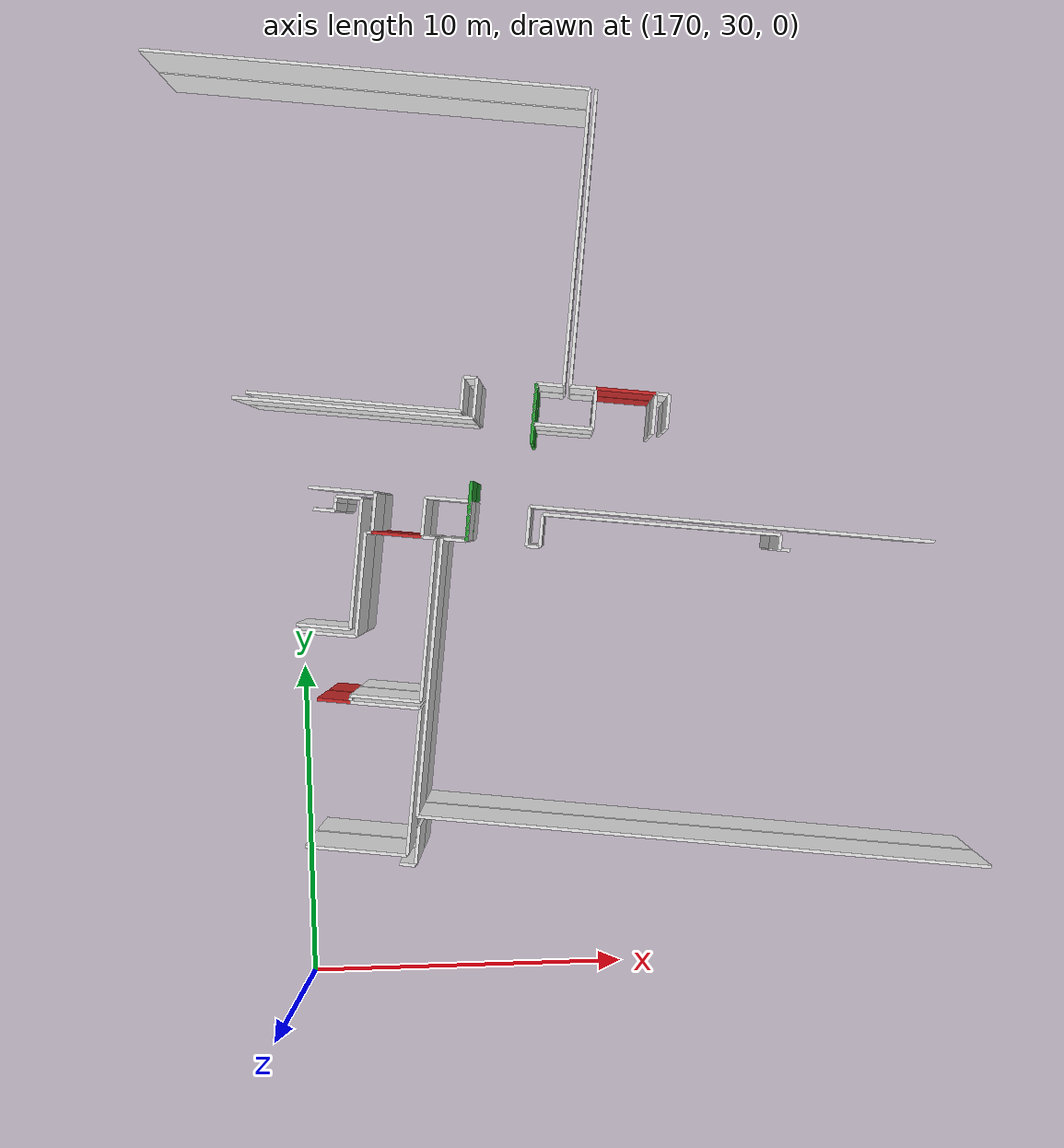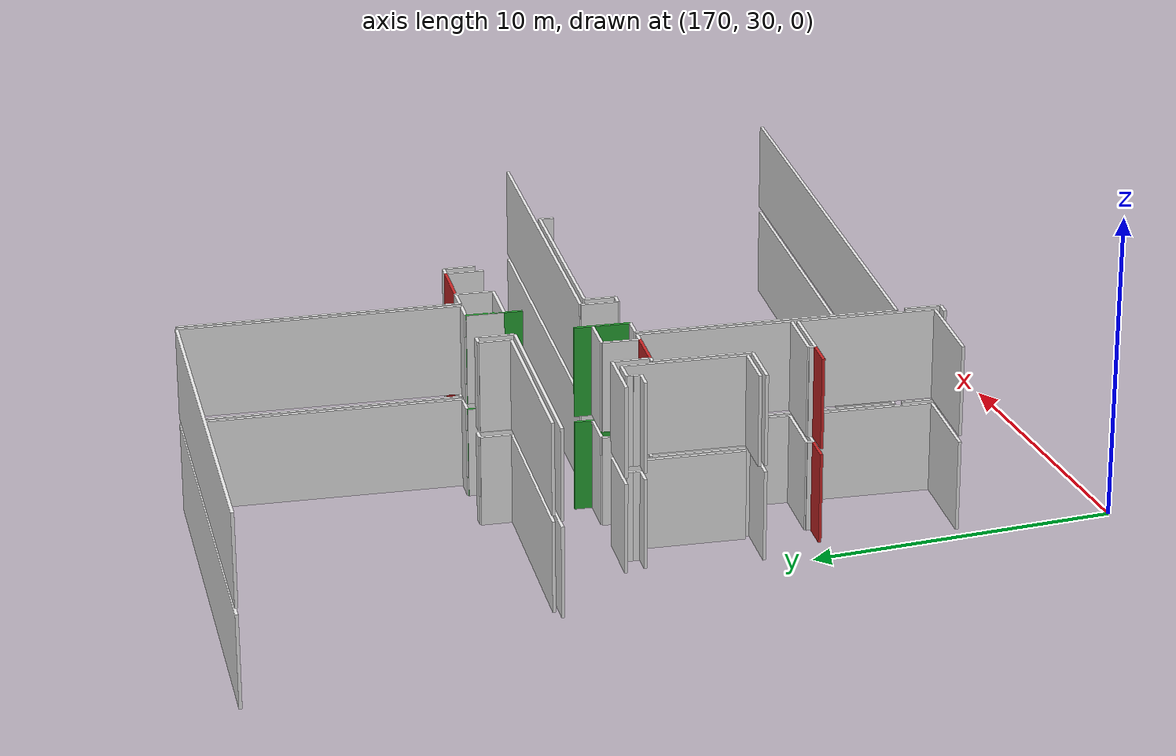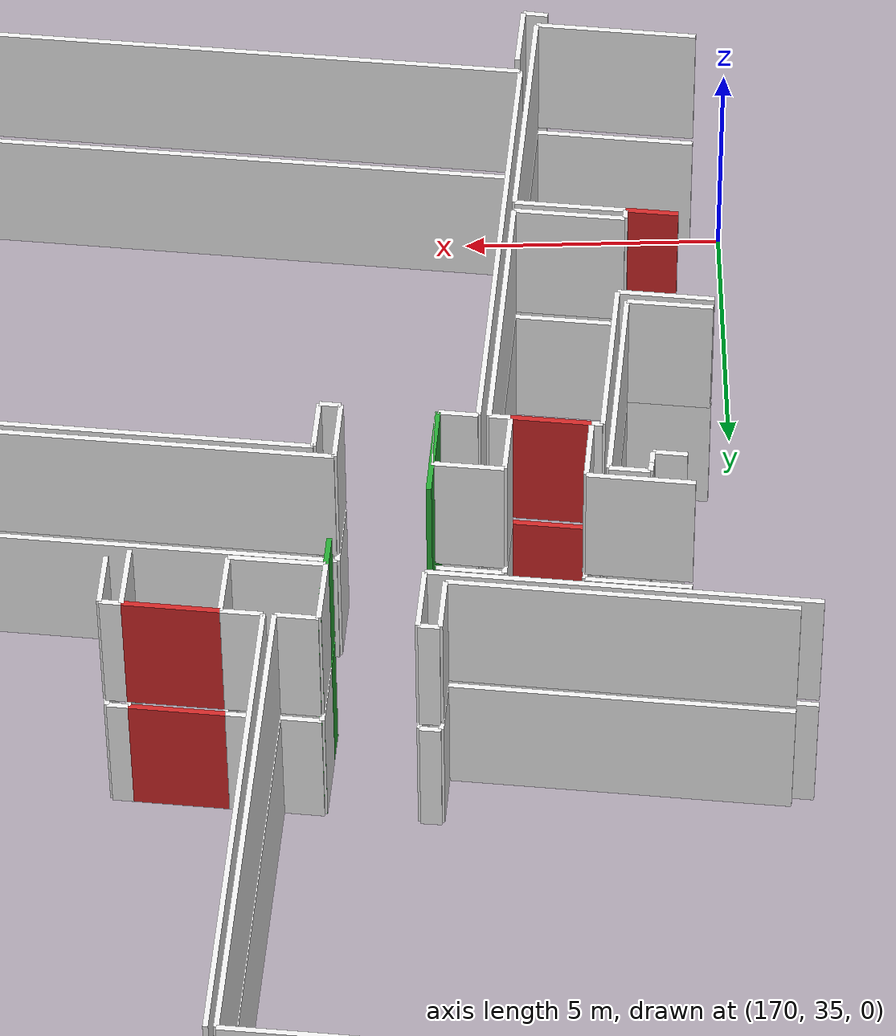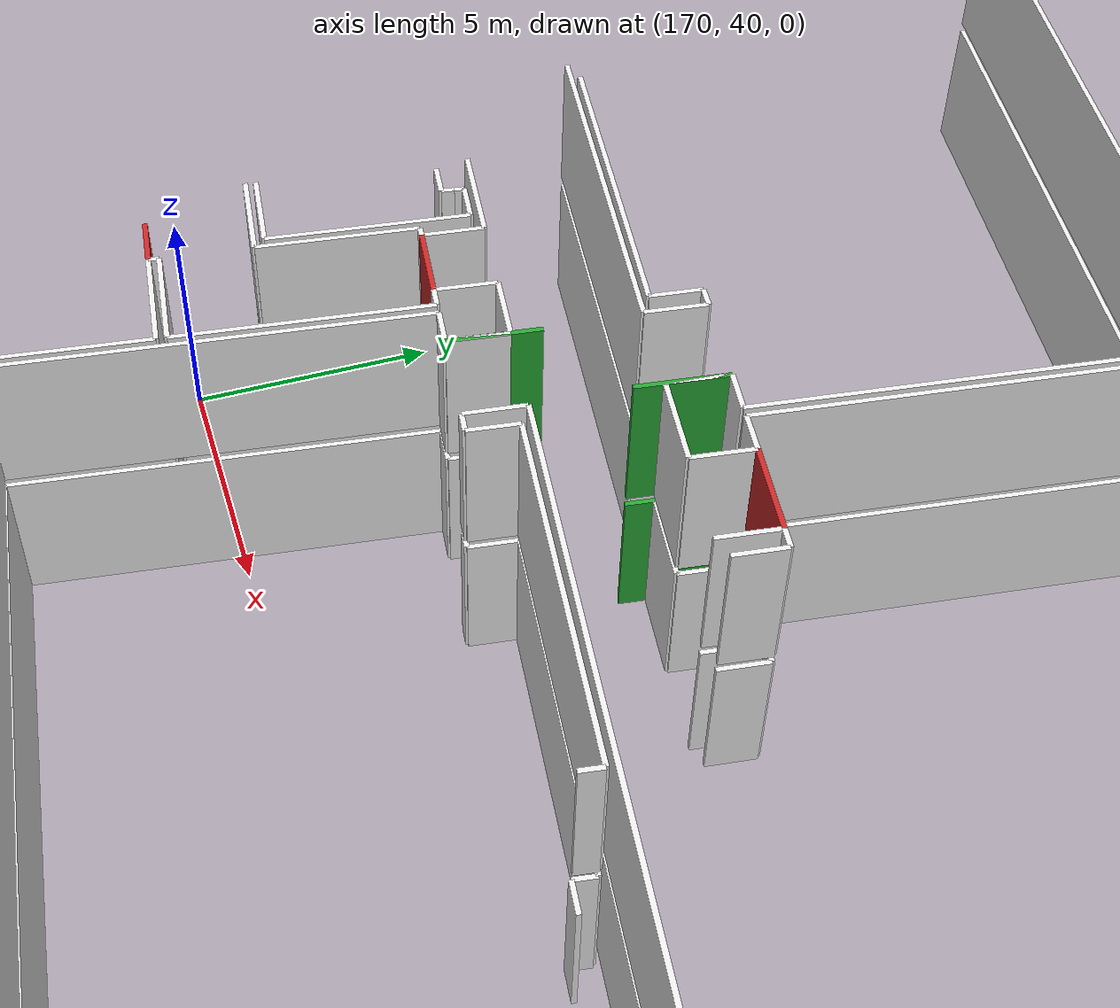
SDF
<sdf version="1.6">
 <world name="default">
  <model name="wall_180.6_48.3_0.0">
   <static>true</static>
   <pose>180.6350000000093 48.31000000005588 1.5 0 0 3.0193009299888676</pose>
   <link name="link">
    <visual name="visual">
     <geometry><box><size>1.8034688796923075 0.1 3</size></box></geometry>
     <material>
      <script><uri>file://media/materials/scripts/gazebo.material</uri><name>Gazebo/Red</name></script>
     </material>
    </visual>
   </link>
  </model>
  <model name="wall_175.8_44.9_0.0">
   <static>true</static>
   <pose>175.80500000022585 44.86500000022352 1.5 0 0 1.4540117310915928</pose>
   <link name="link">
    <visual name="visual">
     <geometry><box><size>1.802276338498982 0.1 3</size></box></geometry>
     <material>
      <script><uri>file://media/materials/scripts/gazebo.material</uri><name>Gazebo/Green</name></script>
     </material>
    </visual>
   </link>
  </model>
  <model name="wall_177.8_47.7_0.0">
   <static>true</static>
   <pose>177.8499999999185 47.734999999869615 1.5 0 0 -1.6930880506520969</pose>
   <link name="link">
    <visual name="visual">
     <geometry><box><size>1.803468879749112 0.1 3</size></box></geometry>
     <material>
      <script><uri>file://media/materials/scripts/gazebo.material</uri><name>Gazebo/Green</name></script>
     </material>
    </visual>
   </link>
  </model>
  <model name="wall_173.6_44.2_0.0">
   <static>true</static>
   <pose>173.6149999999907 44.21999999997206 1.5 0 0 -0.12022278677294355</pose>
   <link name="link">
    <visual name="visual">
     <geometry><box><size>1.5008331019912227 0.1 3</size></box></geometry>
     <material>
      <script><uri>file://media/materials/scripts/gazebo.material</uri><name>Gazebo/Red</name></script>
     </material>
    </visual>
   </link>
  </model>
  <model name="wall_171.6_39.3_0.0">
   <static>true</static>
   <pose>171.56500000000233 39.300000000046566 1.5 0 0 -0.12062366822892527</pose>
   <link name="link">
    <visual name="visual">
     <geometry><box><size>0.9972462082638486 0.1 3</size></box></geometry>
     <material>
      <script><uri>file://media/materials/scripts/gazebo.material</uri><name>Gazebo/Red</name></script>
     </material>
    </visual>
   </link>
  </model>
  <model name="wall_181.9_47.6_0.0">
   <static>true</static>
   <pose>181.86999999999534 47.639999999897555 1.5 0 0 1.4536875822346544</pose>
   <link name="link">
    <visual name="visual">
     <geometry><box><size>1.0270345661353761 0.1 3</size></box></geometry>
     <material>
      <script><uri>file://media/materials/scripts/gazebo.material</uri><name>Gazebo/White</name></script>
     </material>
    </visual>
   </link>
  </model>
  <model name="wall_181.7_48.2_0.0">
   <static>true</static>
   <pose>181.73000000001048 48.175000000046566 1.5 0 0 3.01723765834454</pose>
   <link name="link">
    <visual name="visual">
     <geometry><box><size>0.4031128874149275 0.1 3</size></box></geometry>
     <material>
      <script><uri>file://media/materials/scripts/gazebo.material</uri><name>Gazebo/White</name></script>
     </material>
    </visual>
   </link>
  </model>
  <model name="wall_179.4_48.5_0.0">
   <static>true</static>
   <pose>179.35000000000582 48.46499999985099 1.5 0 0 3.026716048357006</pose>
   <link name="link">
    <visual name="visual">
     <geometry><box><size>0.7851751396509952 0.1 3</size></box></geometry>
     <material>
      <script><uri>file://media/materials/scripts/gazebo.material</uri><name>Gazebo/White</name></script>
     </material>
    </visual>
   </link>
  </model>
  <model name="wall_179.5_52.9_0.0">
   <static>true</static>
   <pose>179.49500000002445 52.949999999953434 1.5 0 0 1.4508789678012857</pose>
   <link name="link">
    <visual name="visual">
     <geometry><box><size>8.944232779076149 0.1 3</size></box></geometry>
     <material>
      <script><uri>file://media/materials/scripts/gazebo.material</uri><name>Gazebo/White</name></script>
     </material>
    </visual>
   </link>
  </model>
  <model name="wall_183.7_44.2_0.0">
   <static>true</static>
   <pose>183.69000000000233 44.22000000020489 1.5 0 0 3.021708265311705</pose>
   <link name="link">
    <visual name="visual">
     <geometry><box><size>12.207620570765556 0.1 3</size></box></geometry>
     <material>
      <script><uri>file://media/materials/scripts/gazebo.material</uri><name>Gazebo/White</name></script>
     </material>
    </visual>
   </link>
  </model>
  <model name="wall_177.6_44.4_0.0">
   <static>true</static>
   <pose>177.55999999999767 44.35499999998137 1.5 0 0 -1.6879050713333807</pose>
   <link name="link">
    <visual name="visual">
     <geometry><box><size>1.1982069942122657 0.1 3</size></box></geometry>
     <material>
      <script><uri>file://media/materials/scripts/gazebo.material</uri><name>Gazebo/White</name></script>
     </material>
    </visual>
   </link>
  </model>
  <model name="wall_175.8_44.6_0.0">
   <static>true</static>
   <pose>175.77499999999418 44.56500000017695 1.5 0 0 1.4454072064764434</pose>
   <link name="link">
    <visual name="visual">
     <geometry><box><size>1.199416524755487 0.1 3</size></box></geometry>
     <material>
      <script><uri>file://media/materials/scripts/gazebo.material</uri><name>Gazebo/White</name></script>
     </material>
    </visual>
   </link>
  </model>
  <model name="wall_175.2_45.2_0.0">
   <static>true</static>
   <pose>175.17999999999302 45.23999999999069 1.5 0 0 3.0227523092521484</pose>
   <link name="link">
    <visual name="visual">
     <geometry><box><size>1.3495184325570784 0.1 3</size></box></geometry>
     <material>
      <script><uri>file://media/materials/scripts/gazebo.material</uri><name>Gazebo/White</name></script>
     </material>
    </visual>
   </link>
  </model>
  <model name="wall_174.4_44.7_0.0">
   <static>true</static>
   <pose>174.43499999999767 44.7249999998603 1.5 0 0 -1.696185447161499</pose>
   <link name="link">
    <visual name="visual">
     <geometry><box><size>1.1994165247627664 0.1 3</size></box></geometry>
     <material>
      <script><uri>file://media/materials/scripts/gazebo.material</uri><name>Gazebo/White</name></script>
     </material>
    </visual>
   </link>
  </model>
  <model name="wall_172.9_44.9_0.0">
   <static>true</static>
   <pose>172.94000000000233 44.90500000002794 1.5 0 0 1.4536875822110042</pose>
   <link name="link">
    <visual name="visual">
     <geometry><box><size>1.198206993749794 0.1 3</size></box></geometry>
     <material>
      <script><uri>file://media/materials/scripts/gazebo.material</uri><name>Gazebo/White</name></script>
     </material>
    </visual>
   </link>
  </model>
  <model name="wall_172.0_45.6_0.0">
   <static>true</static>
   <pose>172.0100000000093 45.62000000011176 1.5 0 0 3.0221637274612827</pose>
   <link name="link">
    <visual name="visual">
     <geometry><box><size>2.0143485299488986 0.1 3</size></box></geometry>
     <material>
      <script><uri>file://media/materials/scripts/gazebo.material</uri><name>Gazebo/White</name></script>
     </material>
    </visual>
   </link>
  </model>
  <model name="wall_172.4_48.1_0.0">
   <static>true</static>
   <pose>172.40499999999884 48.074999999953434 1.5 0 0 -0.11975615108864926</pose>
   <link name="link">
    <visual name="visual">
     <geometry><box><size>7.2821562740685915 0.1 3</size></box></geometry>
     <material>
      <script><uri>file://media/materials/scripts/gazebo.material</uri><name>Gazebo/White</name></script>
     </material>
    </visual>
   </link>
  </model>
  <model name="wall_176.1_48.2_0.0">
   <static>true</static>
   <pose>176.09500000000116 48.24500000011176 1.5 0 0 1.4474586259198403</pose>
   <link name="link">
    <visual name="visual">
     <geometry><box><size>1.2192620718694447 0.1 3</size></box></geometry>
     <material>
      <script><uri>file://media/materials/scripts/gazebo.material</uri><name>Gazebo/White</name></script>
     </material>
    </visual>
   </link>
  </model>
  <model name="wall_177.9_48.0_0.0">
   <static>true</static>
   <pose>177.8850000000093 48.02499999990687 1.5 0 0 -1.6941340277173305</pose>
   <link name="link">
    <visual name="visual">
     <geometry><box><size>1.2192620718766056 0.1 3</size></box></geometry>
     <material>
      <script><uri>file://media/materials/scripts/gazebo.material</uri><name>Gazebo/White</name></script>
     </material>
    </visual>
   </link>
  </model>
  <model name="wall_178.7_47.3_0.0">
   <static>true</static>
   <pose>178.70000000001164 47.31499999994412 1.5 0 0 -0.11743468977405322</pose>
   <link name="link">
    <visual name="visual">
     <geometry><box><size>1.7923448329168745 0.1 3</size></box></geometry>
     <material>
      <script><uri>file://media/materials/scripts/gazebo.material</uri><name>Gazebo/White</name></script>
     </material>
    </visual>
   </link>
  </model>
  <model name="wall_179.7_47.8_0.0">
   <static>true</static>
   <pose>179.66500000000815 47.81499999994412 1.5 0 0 1.4474586259198403</pose>
   <link name="link">
    <visual name="visual">
     <geometry><box><size>1.2192620718694447 0.1 3</size></box></geometry>
     <material>
      <script><uri>file://media/materials/scripts/gazebo.material</uri><name>Gazebo/White</name></script>
     </material>
    </visual>
   </link>
  </model>
  <model name="wall_181.5_47.6_0.0">
   <static>true</static>
   <pose>181.4550000000163 47.59500000020489 1.5 0 0 -1.6941340277173305</pose>
   <link name="link">
    <visual name="visual">
     <geometry><box><size>1.2192620718766056 0.1 3</size></box></geometry>
     <material>
      <script><uri>file://media/materials/scripts/gazebo.material</uri><name>Gazebo/White</name></script>
     </material>
    </visual>
   </link>
  </model>
  <model name="wall_172.2_45.4_0.0">
   <static>true</static>
   <pose>172.21000000002095 45.39500000001863 1.5 0 0 -0.11787210300242888</pose>
   <link name="link">
    <visual name="visual">
     <geometry><box><size>0.7653103945376242 0.1 3</size></box></geometry>
     <material>
      <script><uri>file://media/materials/scripts/gazebo.material</uri><name>Gazebo/White</name></script>
     </material>
    </visual>
   </link>
  </model>
  <model name="wall_172.4_43.4_0.0">
   <static>true</static>
   <pose>172.35500000001048 43.39500000001863 1.5 0 0 -1.69042694704516</pose>
   <link name="link">
    <visual name="visual">
     <geometry><box><size>3.938146772429098 0.1 3</size></box></geometry>
     <material>
      <script><uri>file://media/materials/scripts/gazebo.material</uri><name>Gazebo/White</name></script>
     </material>
    </visual>
   </link>
  </model>
  <model name="wall_171.5_45.0_0.0">
   <static>true</static>
   <pose>171.45000000001164 45.04000000003725 1.5 0 0 -0.12435499465869924</pose>
   <link name="link">
    <visual name="visual">
     <geometry><box><size>0.6449806198869872 0.1 3</size></box></geometry>
     <material>
      <script><uri>file://media/materials/scripts/gazebo.material</uri><name>Gazebo/White</name></script>
     </material>
    </visual>
   </link>
  </model>
  <model name="wall_171.8_45.1_0.0">
   <static>true</static>
   <pose>171.7850000000035 45.125 1.5 0 0 1.4513674008959114</pose>
   <link name="link">
    <visual name="visual">
     <geometry><box><size>0.25179356623667715 0.1 3</size></box></geometry>
     <material>
      <script><uri>file://media/materials/scripts/gazebo.material</uri><name>Gazebo/White</name></script>
     </material>
    </visual>
   </link>
  </model>
  <model name="wall_171.8_45.3_0.0">
   <static>true</static>
   <pose>171.81500000000233 45.34499999997206 1.5 0 0 1.4141944496240997</pose>
   <link name="link">
    <visual name="visual">
     <geometry><box><size>0.19235384056587543 0.1 3</size></box></geometry>
     <material>
      <script><uri>file://media/materials/scripts/gazebo.material</uri><name>Gazebo/White</name></script>
     </material>
    </visual>
   </link>
  </model>
  <model name="wall_178.4_48.6_0.0">
   <static>true</static>
   <pose>178.36000000001513 48.579999999841675 1.5 0 0 3.0172376589266166</pose>
   <link name="link">
    <visual name="visual">
     <geometry><box><size>0.806225774829855 0.1 3</size></box></geometry>
     <material>
      <script><uri>file://media/materials/scripts/gazebo.material</uri><name>Gazebo/White</name></script>
     </material>
    </visual>
   </link>
  </model>
  <model name="wall_176.0_48.9_0.0">
   <static>true</static>
   <pose>175.97000000000116 48.87000000011176 1.5 0 0 3.0419240009977764</pose>
   <link name="link">
    <visual name="visual">
     <geometry><box><size>0.4019950248137912 0.1 3</size></box></geometry>
     <material>
      <script><uri>file://media/materials/scripts/gazebo.material</uri><name>Gazebo/White</name></script>
     </material>
    </visual>
   </link>
  </model>
  <model name="wall_175.7_48.4_0.0">
   <static>true</static>
   <pose>175.71000000002095 48.38000000012107 1.5 0 0 -1.687905071355139</pose>
   <link name="link">
    <visual name="visual">
     <geometry><box><size>1.0270345661353761 0.1 3</size></box></geometry>
     <material>
      <script><uri>file://media/materials/scripts/gazebo.material</uri><name>Gazebo/White</name></script>
     </material>
    </visual>
   </link>
  </model>
  <model name="wall_172.4_48.3_0.0">
   <static>true</static>
   <pose>172.43499999999767 48.26000000000931 1.5 0 0 3.0208760957199403</pose>
   <link name="link">
    <visual name="visual">
     <geometry><box><size>6.4771367131116735 0.1 3</size></box></geometry>
     <material>
      <script><uri>file://media/materials/scripts/gazebo.material</uri><name>Gazebo/White</name></script>
     </material>
    </visual>
   </link>
  </model>
  <model name="wall_173.1_58.2_0.0">
   <static>true</static>
   <pose>173.09500000000116 58.21999999997206 1.5 0 0 -0.11951661708533105</pose>
   <link name="link">
    <visual name="visual">
     <geometry><box><size>13.586923860836658 0.1 3</size></box></geometry>
     <material>
      <script><uri>file://media/materials/scripts/gazebo.material</uri><name>Gazebo/White</name></script>
     </material>
    </visual>
   </link>
  </model>
  <model name="wall_179.3_53.0_0.0">
   <static>true</static>
   <pose>179.30000000001746 52.96999999997206 1.5 0 0 -1.6918235466011338</pose>
   <link name="link">
    <visual name="visual">
     <geometry><box><size>8.945434590131466 0.1 3</size></box></geometry>
     <material>
      <script><uri>file://media/materials/scripts/gazebo.material</uri><name>Gazebo/White</name></script>
     </material>
    </visual>
   </link>
  </model>
  <model name="wall_185.4_43.4_0.0">
   <static>true</static>
   <pose>185.40499999999884 43.359999999869615 1.5 0 0 3.0191315960530236</pose>
   <link name="link">
    <visual name="visual">
     <geometry><box><size>0.6549045731757559 0.1 3</size></box></geometry>
     <material>
      <script><uri>file://media/materials/scripts/gazebo.material</uri><name>Gazebo/White</name></script>
     </material>
    </visual>
   </link>
  </model>
  <model name="wall_185.1_43.6_0.0">
   <static>true</static>
   <pose>185.11000000001513 43.625 1.5 0 0 1.4382447945575316</pose>
   <link name="link">
    <visual name="visual">
     <geometry><box><size>0.45398237869696956 0.1 3</size></box></geometry>
     <material>
      <script><uri>file://media/materials/scripts/gazebo.material</uri><name>Gazebo/White</name></script>
     </material>
    </visual>
   </link>
  </model>
  <model name="wall_181.6_44.3_0.0">
   <static>true</static>
   <pose>181.57500000001164 44.2750000001397 1.5 0 0 3.0229380636870755</pose>
   <link name="link">
    <visual name="visual">
     <geometry><box><size>7.180487448650316 0.1 3</size></box></geometry>
     <material>
      <script><uri>file://media/materials/scripts/gazebo.material</uri><name>Gazebo/White</name></script>
     </material>
    </visual>
   </link>
  </model>
  <model name="wall_178.0_44.2_0.0">
   <static>true</static>
   <pose>177.95000000001164 44.205000000074506 1.5 0 0 -1.6914199953433933</pose>
   <link name="link">
    <visual name="visual">
     <geometry><box><size>0.9972462085370126 0.1 3</size></box></geometry>
     <material>
      <script><uri>file://media/materials/scripts/gazebo.material</uri><name>Gazebo/White</name></script>
     </material>
    </visual>
   </link>
  </model>
  <model name="wall_177.7_43.7_0.0">
   <static>true</static>
   <pose>177.69000000000233 43.734999999869615 1.5 0 0 3.017237659508693</pose>
   <link name="link">
    <visual name="visual">
     <geometry><box><size>0.4031128874149275 0.1 3</size></box></geometry>
     <material>
      <script><uri>file://media/materials/scripts/gazebo.material</uri><name>Gazebo/White</name></script>
     </material>
    </visual>
   </link>
  </model>
  <model name="wall_175.3_44.0_0.0">
   <static>true</static>
   <pose>175.3300000000163 44.015000000130385 1.5 0 0 3.0205654339775116</pose>
   <link name="link">
    <visual name="visual">
     <geometry><box><size>0.7454528824542799 0.1 3</size></box></geometry>
     <material>
      <script><uri>file://media/materials/scripts/gazebo.material</uri><name>Gazebo/White</name></script>
     </material>
    </visual>
   </link>
  </model>
  <model name="wall_174.5_39.9_0.0">
   <static>true</static>
   <pose>174.4550000000163 39.90500000002794 1.5 0 0 -1.6917434222515764</pose>
   <link name="link">
    <visual name="visual">
     <geometry><box><size>8.371152847783126 0.1 3</size></box></geometry>
     <material>
      <script><uri>file://media/materials/scripts/gazebo.material</uri><name>Gazebo/White</name></script>
     </material>
    </visual>
   </link>
  </model>
  <model name="wall_182.5_34.7_0.0">
   <static>true</static>
   <pose>182.5450000000128 34.71500000008382 1.5 0 0 -0.11984180790102025</pose>
   <link name="link">
    <visual name="visual">
     <geometry><box><size>17.31418493603976 0.1 3</size></box></geometry>
     <material>
      <script><uri>file://media/materials/scripts/gazebo.material</uri><name>Gazebo/White</name></script>
     </material>
    </visual>
   </link>
  </model>
  <model name="wall_173.1_39.1_0.0">
   <static>true</static>
   <pose>173.10500000001048 39.11500000022352 1.5 0 0 -0.11905156754423915</pose>
   <link name="link">
    <visual name="visual">
     <geometry><box><size>2.1048990474859015 0.1 3</size></box></geometry>
     <material>
      <script><uri>file://media/materials/scripts/gazebo.material</uri><name>Gazebo/White</name></script>
     </material>
    </visual>
   </link>
  </model>
  <model name="wall_173.9_36.8_0.0">
   <static>true</static>
   <pose>173.88000000000466 36.79000000003725 1.5 0 0 -1.6929129367177644</pose>
   <link name="link">
    <visual name="visual">
     <geometry><box><size>4.43301252009494 0.1 3</size></box></geometry>
     <material>
      <script><uri>file://media/materials/scripts/gazebo.material</uri><name>Gazebo/White</name></script>
     </material>
    </visual>
   </link>
  </model>
  <model name="wall_172.1_34.8_0.0">
   <static>true</static>
   <pose>172.08499999999185 34.77499999990687 1.5 0 0 3.020871070550642</pose>
   <link name="link">
    <visual name="visual">
     <geometry><box><size>3.0723606559145504 0.1 3</size></box></geometry>
     <material>
      <script><uri>file://media/materials/scripts/gazebo.material</uri><name>Gazebo/White</name></script>
     </material>
    </visual>
   </link>
  </model>
  <model name="wall_171.4_41.3_0.0">
   <static>true</static>
   <pose>171.3849999999802 41.32000000006519 1.5 0 0 -0.1209536472312257</pose>
   <link name="link">
    <visual name="visual">
     <geometry><box><size>1.823321145624578 0.1 3</size></box></geometry>
     <material>
      <script><uri>file://media/materials/scripts/gazebo.material</uri><name>Gazebo/White</name></script>
     </material>
    </visual>
   </link>
  </model>
  <model name="wall_172.5_42.8_0.0">
   <static>true</static>
   <pose>172.47999999998137 42.77000000001863 1.5 0 0 1.4495983856926966</pose>
   <link name="link">
    <visual name="visual">
     <geometry><box><size>3.1430558379864832 0.1 3</size></box></geometry>
     <material>
      <script><uri>file://media/materials/scripts/gazebo.material</uri><name>Gazebo/White</name></script>
     </material>
    </visual>
   </link>
  </model>
  <model name="wall_172.8_44.3_0.0">
   <static>true</static>
   <pose>172.76999999998952 44.32000000006519 1.5 0 0 -0.09966865257760905</pose>
   <link name="link">
    <visual name="visual">
     <geometry><box><size>0.20099751243585498 0.1 3</size></box></geometry>
     <material>
      <script><uri>file://media/materials/scripts/gazebo.material</uri><name>Gazebo/White</name></script>
     </material>
    </visual>
   </link>
  </model>
  <model name="wall_174.6_44.1_0.0">
   <static>true</static>
   <pose>174.55999999999767 44.10499999998137 1.5 0 0 -0.12435499408110015</pose>
   <link name="link">
    <visual name="visual">
     <geometry><box><size>0.4031128874149275 0.1 3</size></box></geometry>
     <material>
      <script><uri>file://media/materials/scripts/gazebo.material</uri><name>Gazebo/White</name></script>
     </material>
    </visual>
   </link>
  </model>
  <model name="wall_174.5_41.6_0.0">
   <static>true</static>
   <pose>174.4649999999965 41.63500000000931 1.5 0 0 -1.690870309974588</pose>
   <link name="link">
    <visual name="visual">
     <geometry><box><size>4.925464445238173 0.1 3</size></box></geometry>
     <material>
      <script><uri>file://media/materials/scripts/gazebo.material</uri><name>Gazebo/White</name></script>
     </material>
    </visual>
   </link>
  </model>
  <model name="wall_173.1_39.3_0.0">
   <static>true</static>
   <pose>173.125 39.31499999994412 1.5 0 0 3.0225410860422697</pose>
   <link name="link">
    <visual name="visual">
     <geometry><box><size>2.104899047428106 0.1 3</size></box></geometry>
     <material>
      <script><uri>file://media/materials/scripts/gazebo.material</uri><name>Gazebo/White</name></script>
     </material>
    </visual>
   </link>
  </model>
  <model name="wall_172.1_39.3_0.0">
   <static>true</static>
   <pose>172.07000000000698 39.34000000008382 1.5 0 0 -1.670464979516584</pose>
   <link name="link">
    <visual name="visual">
     <geometry><box><size>0.20099751214626105 0.1 3</size></box></geometry>
     <material>
      <script><uri>file://media/materials/scripts/gazebo.material</uri><name>Gazebo/White</name></script>
     </material>
    </visual>
   </link>
  </model>
  <model name="wall_173.6_34.3_0.0">
   <static>true</static>
   <pose>173.6149999999907 34.31499999994412 1.5 0 0 -0.14784936588774888</pose>
   <link name="link">
    <visual name="visual">
     <geometry><box><size>0.4751841748369362 0.1 3</size></box></geometry>
     <material>
      <script><uri>file://media/materials/scripts/gazebo.material</uri><name>Gazebo/White</name></script>
     </material>
    </visual>
   </link>
  </model>
  <model name="wall_173.9_34.9_0.0">
   <static>true</static>
   <pose>173.92499999998836 34.86999999987893 1.5 0 0 1.4443558295348613</pose>
   <link name="link">
    <visual name="visual">
     <geometry><box><size>1.1894956916284358 0.1 3</size></box></geometry>
     <material>
      <script><uri>file://media/materials/scripts/gazebo.material</uri><name>Gazebo/White</name></script>
     </material>
    </visual>
   </link>
  </model>
  <model name="wall_180.6_48.3_3.2">
   <static>true</static>
   <pose>180.6350000000093 48.31000000005588 4.7 0 0 3.0193009299888676</pose>
   <link name="link">
    <visual name="visual">
     <geometry><box><size>1.8034688796923075 0.1 3</size></box></geometry>
     <material>
      <script><uri>file://media/materials/scripts/gazebo.material</uri><name>Gazebo/Red</name></script>
     </material>
    </visual>
   </link>
  </model>
  <model name="wall_175.8_44.9_3.2">
   <static>true</static>
   <pose>175.80500000022585 44.86500000022352 4.7 0 0 1.4540117310915928</pose>
   <link name="link">
    <visual name="visual">
     <geometry><box><size>1.802276338498982 0.1 3</size></box></geometry>
     <material>
      <script><uri>file://media/materials/scripts/gazebo.material</uri><name>Gazebo/Green</name></script>
     </material>
    </visual>
   </link>
  </model>
  <model name="wall_177.8_47.7_3.2">
   <static>true</static>
   <pose>177.8499999999185 47.734999999869615 4.7 0 0 -1.6930880506520969</pose>
   <link name="link">
    <visual name="visual">
     <geometry><box><size>1.803468879749112 0.1 3</size></box></geometry>
     <material>
      <script><uri>file://media/materials/scripts/gazebo.material</uri><name>Gazebo/Green</name></script>
     </material>
    </visual>
   </link>
  </model>
  <model name="wall_173.6_44.2_3.2">
   <static>true</static>
   <pose>173.6149999999907 44.21999999997206 4.7 0 0 -0.12022278677294355</pose>
   <link name="link">
    <visual name="visual">
     <geometry><box><size>1.5008331019912227 0.1 3</size></box></geometry>
     <material>
      <script><uri>file://media/materials/scripts/gazebo.material</uri><name>Gazebo/Red</name></script>
     </material>
    </visual>
   </link>
  </model>
  <model name="wall_171.6_39.3_3.2">
   <static>true</static>
   <pose>171.56500000000233 39.300000000046566 4.7 0 0 -0.12062366822892527</pose>
   <link name="link">
    <visual name="visual">
     <geometry><box><size>0.9972462082638486 0.1 3</size></box></geometry>
     <material>
      <script><uri>file://media/materials/scripts/gazebo.material</uri><name>Gazebo/Red</name></script>
     </material>
    </visual>
   </link>
  </model>
  <model name="wall_181.9_47.6_3.2">
   <static>true</static>
   <pose>181.86999999999534 47.639999999897555 4.7 0 0 1.4536875822346544</pose>
   <link name="link">
    <visual name="visual">
     <geometry><box><size>1.0270345661353761 0.1 3</size></box></geometry>
     <material>
      <script><uri>file://media/materials/scripts/gazebo.material</uri><name>Gazebo/White</name></script>
     </material>
    </visual>
   </link>
  </model>
  <model name="wall_181.7_48.2_3.2">
   <static>true</static>
   <pose>181.73000000001048 48.175000000046566 4.7 0 0 3.01723765834454</pose>
   <link name="link">
    <visual name="visual">
     <geometry><box><size>0.4031128874149275 0.1 3</size></box></geometry>
     <material>
      <script><uri>file://media/materials/scripts/gazebo.material</uri><name>Gazebo/White</name></script>
     </material>
    </visual>
   </link>
  </model>
  <model name="wall_179.4_48.5_3.2">
   <static>true</static>
   <pose>179.35000000000582 48.46499999985099 4.7 0 0 3.026716048357006</pose>
   <link name="link">
    <visual name="visual">
     <geometry><box><size>0.7851751396509952 0.1 3</size></box></geometry>
     <material>
      <script><uri>file://media/materials/scripts/gazebo.material</uri><name>Gazebo/White</name></script>
     </material>
    </visual>
   </link>
  </model>
  <model name="wall_179.5_52.9_3.2">
   <static>true</static>
   <pose>179.49500000002445 52.949999999953434 4.7 0 0 1.4508789678012857</pose>
   <link name="link">
    <visual name="visual">
     <geometry><box><size>8.944232779076149 0.1 3</size></box></geometry>
     <material>
      <script><uri>file://media/materials/scripts/gazebo.material</uri><name>Gazebo/White</name></script>
     </material>
    </visual>
   </link>
  </model>
  <model name="wall_183.7_44.2_3.2">
   <static>true</static>
   <pose>183.69000000000233 44.22000000020489 4.7 0 0 3.021708265311705</pose>
   <link name="link">
    <visual name="visual">
     <geometry><box><size>12.207620570765556 0.1 3</size></box></geometry>
     <material>
      <script><uri>file://media/materials/scripts/gazebo.material</uri><name>Gazebo/White</name></script>
     </material>
    </visual>
   </link>
  </model>
  <model name="wall_177.6_44.4_3.2">
   <static>true</static>
   <pose>177.55999999999767 44.35499999998137 4.7 0 0 -1.6879050713333807</pose>
   <link name="link">
    <visual name="visual">
     <geometry><box><size>1.1982069942122657 0.1 3</size></box></geometry>
     <material>
      <script><uri>file://media/materials/scripts/gazebo.material</uri><name>Gazebo/White</name></script>
     </material>
    </visual>
   </link>
  </model>
  <model name="wall_175.8_44.6_3.2">
   <static>true</static>
   <pose>175.77499999999418 44.56500000017695 4.7 0 0 1.4454072064764434</pose>
   <link name="link">
    <visual name="visual">
     <geometry><box><size>1.199416524755487 0.1 3</size></box></geometry>
     <material>
      <script><uri>file://media/materials/scripts/gazebo.material</uri><name>Gazebo/White</name></script>
     </material>
    </visual>
   </link>
  </model>
  <model name="wall_175.2_45.2_3.2">
   <static>true</static>
   <pose>175.17999999999302 45.23999999999069 4.7 0 0 3.0227523092521484</pose>
   <link name="link">
    <visual name="visual">
     <geometry><box><size>1.3495184325570784 0.1 3</size></box></geometry>
     <material>
      <script><uri>file://media/materials/scripts/gazebo.material</uri><name>Gazebo/White</name></script>
     </material>
    </visual>
   </link>
  </model>
  <model name="wall_174.4_44.7_3.2">
   <static>true</static>
   <pose>174.43499999999767 44.7249999998603 4.7 0 0 -1.696185447161499</pose>
   <link name="link">
    <visual name="visual">
     <geometry><box><size>1.1994165247627664 0.1 3</size></box></geometry>
     <material>
      <script><uri>file://media/materials/scripts/gazebo.material</uri><name>Gazebo/White</name></script>
     </material>
    </visual>
   </link>
  </model>
  <model name="wall_172.9_44.9_3.2">
   <static>true</static>
   <pose>172.94000000000233 44.90500000002794 4.7 0 0 1.4536875822110042</pose>
   <link name="link">
    <visual name="visual">
     <geometry><box><size>1.198206993749794 0.1 3</size></box></geometry>
     <material>
      <script><uri>file://media/materials/scripts/gazebo.material</uri><name>Gazebo/White</name></script>
     </material>
    </visual>
   </link>
  </model>
  <model name="wall_172.0_45.6_3.2">
   <static>true</static>
   <pose>172.0100000000093 45.62000000011176 4.7 0 0 3.0221637274612827</pose>
   <link name="link">
    <visual name="visual">
     <geometry><box><size>2.0143485299488986 0.1 3</size></box></geometry>
     <material>
      <script><uri>file://media/materials/scripts/gazebo.material</uri><name>Gazebo/White</name></script>
     </material>
    </visual>
   </link>
  </model>
  <model name="wall_172.4_48.1_3.2">
   <static>true</static>
   <pose>172.40499999999884 48.074999999953434 4.7 0 0 -0.11975615108864926</pose>
   <link name="link">
    <visual name="visual">
     <geometry><box><size>7.2821562740685915 0.1 3</size></box></geometry>
     <material>
      <script><uri>file://media/materials/scripts/gazebo.material</uri><name>Gazebo/White</name></script>
     </material>
    </visual>
   </link>
  </model>
  <model name="wall_176.1_48.2_3.2">
   <static>true</static>
   <pose>176.09500000000116 48.24500000011176 4.7 0 0 1.4474586259198403</pose>
   <link name="link">
    <visual name="visual">
     <geometry><box><size>1.2192620718694447 0.1 3</size></box></geometry>
     <material>
      <script><uri>file://media/materials/scripts/gazebo.material</uri><name>Gazebo/White</name></script>
     </material>
    </visual>
   </link>
  </model>
  <model name="wall_177.9_48.0_3.2">
   <static>true</static>
   <pose>177.8850000000093 48.02499999990687 4.7 0 0 -1.6941340277173305</pose>
   <link name="link">
    <visual name="visual">
     <geometry><box><size>1.2192620718766056 0.1 3</size></box></geometry>
     <material>
      <script><uri>file://media/materials/scripts/gazebo.material</uri><name>Gazebo/White</name></script>
     </material>
    </visual>
   </link>
  </model>
  <model name="wall_178.7_47.3_3.2">
   <static>true</static>
   <pose>178.70000000001164 47.31499999994412 4.7 0 0 -0.11743468977405322</pose>
   <link name="link">
    <visual name="visual">
     <geometry><box><size>1.7923448329168745 0.1 3</size></box></geometry>
     <material>
      <script><uri>file://media/materials/scripts/gazebo.material</uri><name>Gazebo/White</name></script>
     </material>
    </visual>
   </link>
  </model>
  <model name="wall_179.7_47.8_3.2">
   <static>true</static>
   <pose>179.66500000000815 47.81499999994412 4.7 0 0 1.4474586259198403</pose>
   <link name="link">
    <visual name="visual">
     <geometry><box><size>1.2192620718694447 0.1 3</size></box></geometry>
     <material>
      <script><uri>file://media/materials/scripts/gazebo.material</uri><name>Gazebo/White</name></script>
     </material>
    </visual>
   </link>
  </model>
  <model name="wall_181.5_47.6_3.2">
   <static>true</static>
   <pose>181.4550000000163 47.59500000020489 4.7 0 0 -1.6941340277173305</pose>
   <link name="link">
    <visual name="visual">
     <geometry><box><size>1.2192620718766056 0.1 3</size></box></geometry>
     <material>
      <script><uri>file://media/materials/scripts/gazebo.material</uri><name>Gazebo/White</name></script>
     </material>
    </visual>
   </link>
  </model>
  <model name="wall_172.2_45.4_3.2">
   <static>true</static>
   <pose>172.21000000002095 45.39500000001863 4.7 0 0 -0.11787210300242888</pose>
   <link name="link">
    <visual name="visual">
     <geometry><box><size>0.7653103945376242 0.1 3</size></box></geometry>
     <material>
      <script><uri>file://media/materials/scripts/gazebo.material</uri><name>Gazebo/White</name></script>
     </material>
    </visual>
   </link>
  </model>
  <model name="wall_172.4_43.4_3.2">
   <static>true</static>
   <pose>172.35500000001048 43.39500000001863 4.7 0 0 -1.69042694704516</pose>
   <link name="link">
    <visual name="visual">
     <geometry><box><size>3.938146772429098 0.1 3</size></box></geometry>
     <material>
      <script><uri>file://media/materials/scripts/gazebo.material</uri><name>Gazebo/White</name></script>
     </material>
    </visual>
   </link>
  </model>
  <model name="wall_171.3_41.5_3.2">
   <static>true</static>
   <pose>171.31500000000233 41.53499999991618 4.7 0 0 3.024123548711388</pose>
   <link name="link">
    <visual name="visual">
     <geometry><box><size>1.6211724152395952 0.1 3</size></box></geometry>
     <material>
      <script><uri>file://media/materials/scripts/gazebo.material</uri><name>Gazebo/White</name></script>
     </material>
    </visual>
   </link>
  </model>
  <model name="wall_171.5_45.0_3.2">
   <static>true</static>
   <pose>171.45000000001164 45.04000000003725 4.7 0 0 -0.12435499465869924</pose>
   <link name="link">
    <visual name="visual">
     <geometry><box><size>0.6449806198869872 0.1 3</size></box></geometry>
     <material>
      <script><uri>file://media/materials/scripts/gazebo.material</uri><name>Gazebo/White</name></script>
     </material>
    </visual>
   </link>
  </model>
  <model name="wall_171.8_45.1_3.2">
   <static>true</static>
   <pose>171.7850000000035 45.125 4.7 0 0 1.4513674008959114</pose>
   <link name="link">
    <visual name="visual">
     <geometry><box><size>0.25179356623667715 0.1 3</size></box></geometry>
     <material>
      <script><uri>file://media/materials/scripts/gazebo.material</uri><name>Gazebo/White</name></script>
     </material>
    </visual>
   </link>
  </model>
  <model name="wall_171.8_45.3_3.2">
   <static>true</static>
   <pose>171.81500000000233 45.34499999997206 4.7 0 0 1.4141944496240997</pose>
   <link name="link">
    <visual name="visual">
     <geometry><box><size>0.19235384056587543 0.1 3</size></box></geometry>
     <material>
      <script><uri>file://media/materials/scripts/gazebo.material</uri><name>Gazebo/White</name></script>
     </material>
    </visual>
   </link>
  </model>
  <model name="wall_178.4_48.6_3.2">
   <static>true</static>
   <pose>178.36000000001513 48.579999999841675 4.7 0 0 3.0172376589266166</pose>
   <link name="link">
    <visual name="visual">
     <geometry><box><size>0.806225774829855 0.1 3</size></box></geometry>
     <material>
      <script><uri>file://media/materials/scripts/gazebo.material</uri><name>Gazebo/White</name></script>
     </material>
    </visual>
   </link>
  </model>
  <model name="wall_176.0_48.9_3.2">
   <static>true</static>
   <pose>175.97000000000116 48.87000000011176 4.7 0 0 3.0419240009977764</pose>
   <link name="link">
    <visual name="visual">
     <geometry><box><size>0.4019950248137912 0.1 3</size></box></geometry>
     <material>
      <script><uri>file://media/materials/scripts/gazebo.material</uri><name>Gazebo/White</name></script>
     </material>
    </visual>
   </link>
  </model>
  <model name="wall_175.7_48.4_3.2">
   <static>true</static>
   <pose>175.71000000002095 48.38000000012107 4.7 0 0 -1.687905071355139</pose>
   <link name="link">
    <visual name="visual">
     <geometry><box><size>1.0270345661353761 0.1 3</size></box></geometry>
     <material>
      <script><uri>file://media/materials/scripts/gazebo.material</uri><name>Gazebo/White</name></script>
     </material>
    </visual>
   </link>
  </model>
  <model name="wall_172.4_48.3_3.2">
   <static>true</static>
   <pose>172.43499999999767 48.26000000000931 4.7 0 0 3.0208760957199403</pose>
   <link name="link">
    <visual name="visual">
     <geometry><box><size>6.4771367131116735 0.1 3</size></box></geometry>
     <material>
      <script><uri>file://media/materials/scripts/gazebo.material</uri><name>Gazebo/White</name></script>
     </material>
    </visual>
   </link>
  </model>
  <model name="wall_173.1_58.2_3.2">
   <static>true</static>
   <pose>173.09500000000116 58.21999999997206 4.7 0 0 -0.11951661708533105</pose>
   <link name="link">
    <visual name="visual">
     <geometry><box><size>13.586923860836658 0.1 3</size></box></geometry>
     <material>
      <script><uri>file://media/materials/scripts/gazebo.material</uri><name>Gazebo/White</name></script>
     </material>
    </visual>
   </link>
  </model>
  <model name="wall_179.3_53.0_3.2">
   <static>true</static>
   <pose>179.30000000001746 52.96999999997206 4.7 0 0 -1.6918235466011338</pose>
   <link name="link">
    <visual name="visual">
     <geometry><box><size>8.945434590131466 0.1 3</size></box></geometry>
     <material>
      <script><uri>file://media/materials/scripts/gazebo.material</uri><name>Gazebo/White</name></script>
     </material>
    </visual>
   </link>
  </model>
  <model name="wall_185.1_43.6_3.2">
   <static>true</static>
   <pose>185.11000000001513 43.625 4.7 0 0 1.4382447945575316</pose>
   <link name="link">
    <visual name="visual">
     <geometry><box><size>0.45398237869696956 0.1 3</size></box></geometry>
     <material>
      <script><uri>file://media/materials/scripts/gazebo.material</uri><name>Gazebo/White</name></script>
     </material>
    </visual>
   </link>
  </model>
  <model name="wall_181.6_44.3_3.2">
   <static>true</static>
   <pose>181.57500000001164 44.2750000001397 4.7 0 0 3.0229380636870755</pose>
   <link name="link">
    <visual name="visual">
     <geometry><box><size>7.180487448650316 0.1 3</size></box></geometry>
     <material>
      <script><uri>file://media/materials/scripts/gazebo.material</uri><name>Gazebo/White</name></script>
     </material>
    </visual>
   </link>
  </model>
  <model name="wall_178.0_44.2_3.2">
   <static>true</static>
   <pose>177.95000000001164 44.205000000074506 4.7 0 0 -1.6914199953433933</pose>
   <link name="link">
    <visual name="visual">
     <geometry><box><size>0.9972462085370126 0.1 3</size></box></geometry>
     <material>
      <script><uri>file://media/materials/scripts/gazebo.material</uri><name>Gazebo/White</name></script>
     </material>
    </visual>
   </link>
  </model>
  <model name="wall_177.7_43.7_3.2">
   <static>true</static>
   <pose>177.69000000000233 43.734999999869615 4.7 0 0 3.017237659508693</pose>
   <link name="link">
    <visual name="visual">
     <geometry><box><size>0.4031128874149275 0.1 3</size></box></geometry>
     <material>
      <script><uri>file://media/materials/scripts/gazebo.material</uri><name>Gazebo/White</name></script>
     </material>
    </visual>
   </link>
  </model>
  <model name="wall_175.3_44.0_3.2">
   <static>true</static>
   <pose>175.3300000000163 44.015000000130385 4.7 0 0 3.0205654339775116</pose>
   <link name="link">
    <visual name="visual">
     <geometry><box><size>0.7454528824542799 0.1 3</size></box></geometry>
     <material>
      <script><uri>file://media/materials/scripts/gazebo.material</uri><name>Gazebo/White</name></script>
     </material>
    </visual>
   </link>
  </model>
  <model name="wall_174.5_39.9_3.2">
   <static>true</static>
   <pose>174.4550000000163 39.90500000002794 4.7 0 0 -1.6917434222515764</pose>
   <link name="link">
    <visual name="visual">
     <geometry><box><size>8.371152847783126 0.1 3</size></box></geometry>
     <material>
      <script><uri>file://media/materials/scripts/gazebo.material</uri><name>Gazebo/White</name></script>
     </material>
    </visual>
   </link>
  </model>
  <model name="wall_182.5_34.7_3.2">
   <static>true</static>
   <pose>182.5450000000128 34.71500000008382 4.7 0 0 -0.11984180790102025</pose>
   <link name="link">
    <visual name="visual">
     <geometry><box><size>17.31418493603976 0.1 3</size></box></geometry>
     <material>
      <script><uri>file://media/materials/scripts/gazebo.material</uri><name>Gazebo/White</name></script>
     </material>
    </visual>
   </link>
  </model>
  <model name="wall_173.1_39.1_3.2">
   <static>true</static>
   <pose>173.10500000001048 39.11500000022352 4.7 0 0 -0.11905156754423915</pose>
   <link name="link">
    <visual name="visual">
     <geometry><box><size>2.1048990474859015 0.1 3</size></box></geometry>
     <material>
      <script><uri>file://media/materials/scripts/gazebo.material</uri><name>Gazebo/White</name></script>
     </material>
    </visual>
   </link>
  </model>
  <model name="wall_173.9_36.8_3.2">
   <static>true</static>
   <pose>173.88000000000466 36.79000000003725 4.7 0 0 -1.6929129367177644</pose>
   <link name="link">
    <visual name="visual">
     <geometry><box><size>4.43301252009494 0.1 3</size></box></geometry>
     <material>
      <script><uri>file://media/materials/scripts/gazebo.material</uri><name>Gazebo/White</name></script>
     </material>
    </visual>
   </link>
  </model>
  <model name="wall_172.1_34.8_3.2">
   <static>true</static>
   <pose>172.08499999999185 34.77499999990687 4.7 0 0 3.020871070550642</pose>
   <link name="link">
    <visual name="visual">
     <geometry><box><size>3.0723606559145504 0.1 3</size></box></geometry>
     <material>
      <script><uri>file://media/materials/scripts/gazebo.material</uri><name>Gazebo/White</name></script>
     </material>
    </visual>
   </link>
  </model>
  <model name="wall_171.4_41.3_3.2">
   <static>true</static>
   <pose>171.3849999999802 41.32000000006519 4.7 0 0 -0.1209536472312257</pose>
   <link name="link">
    <visual name="visual">
     <geometry><box><size>1.823321145624578 0.1 3</size></box></geometry>
     <material>
      <script><uri>file://media/materials/scripts/gazebo.material</uri><name>Gazebo/White</name></script>
     </material>
    </visual>
   </link>
  </model>
  <model name="wall_172.5_42.8_3.2">
   <static>true</static>
   <pose>172.47999999998137 42.77000000001863 4.7 0 0 1.4495983856926966</pose>
   <link name="link">
    <visual name="visual">
     <geometry><box><size>3.1430558379864832 0.1 3</size></box></geometry>
     <material>
      <script><uri>file://media/materials/scripts/gazebo.material</uri><name>Gazebo/White</name></script>
     </material>
    </visual>
   </link>
  </model>
  <model name="wall_172.8_44.3_3.2">
   <static>true</static>
   <pose>172.76999999998952 44.32000000006519 4.7 0 0 -0.09966865257760905</pose>
   <link name="link">
    <visual name="visual">
     <geometry><box><size>0.20099751243585498 0.1 3</size></box></geometry>
     <material>
      <script><uri>file://media/materials/scripts/gazebo.material</uri><name>Gazebo/White</name></script>
     </material>
    </visual>
   </link>
  </model>
  <model name="wall_174.6_44.1_3.2">
   <static>true</static>
   <pose>174.55999999999767 44.10499999998137 4.7 0 0 -0.12435499408110015</pose>
   <link name="link">
    <visual name="visual">
     <geometry><box><size>0.4031128874149275 0.1 3</size></box></geometry>
     <material>
      <script><uri>file://media/materials/scripts/gazebo.material</uri><name>Gazebo/White</name></script>
     </material>
    </visual>
   </link>
  </model>
  <model name="wall_174.5_41.6_3.2">
   <static>true</static>
   <pose>174.4649999999965 41.63500000000931 4.7 0 0 -1.690870309974588</pose>
   <link name="link">
    <visual name="visual">
     <geometry><box><size>4.925464445238173 0.1 3</size></box></geometry>
     <material>
      <script><uri>file://media/materials/scripts/gazebo.material</uri><name>Gazebo/White</name></script>
     </material>
    </visual>
   </link>
  </model>
  <model name="wall_173.1_39.3_3.2">
   <static>true</static>
   <pose>173.125 39.31499999994412 4.7 0 0 3.0225410860422697</pose>
   <link name="link">
    <visual name="visual">
     <geometry><box><size>2.104899047428106 0.1 3</size></box></geometry>
     <material>
      <script><uri>file://media/materials/scripts/gazebo.material</uri><name>Gazebo/White</name></script>
     </material>
    </visual>
   </link>
  </model>
  <model name="wall_172.1_39.3_3.2">
   <static>true</static>
   <pose>172.07000000000698 39.34000000008382 4.7 0 0 -1.670464979516584</pose>
   <link name="link">
    <visual name="visual">
     <geometry><box><size>0.20099751214626105 0.1 3</size></box></geometry>
     <material>
      <script><uri>file://media/materials/scripts/gazebo.material</uri><name>Gazebo/White</name></script>
     </material>
    </visual>
   </link>
  </model>
  <model name="wall_173.6_34.3_3.2">
   <static>true</static>
   <pose>173.6149999999907 34.31499999994412 4.7 0 0 -0.14784936588774888</pose>
   <link name="link">
    <visual name="visual">
     <geometry><box><size>0.4751841748369362 0.1 3</size></box></geometry>
     <material>
      <script><uri>file://media/materials/scripts/gazebo.material</uri><name>Gazebo/White</name></script>
     </material>
    </visual>
   </link>
  </model>
  <model name="wall_173.9_34.9_3.2">
   <static>true</static>
   <pose>173.92499999998836 34.86999999987893 4.7 0 0 1.4443558295348613</pose>
   <link name="link">
    <visual name="visual">
     <geometry><box><size>1.1894956916284358 0.1 3</size></box></geometry>
     <material>
      <script><uri>file://media/materials/scripts/gazebo.material</uri><name>Gazebo/White</name></script>
     </material>
    </visual>
   </link>
  </model>
 </world>
</sdf>
